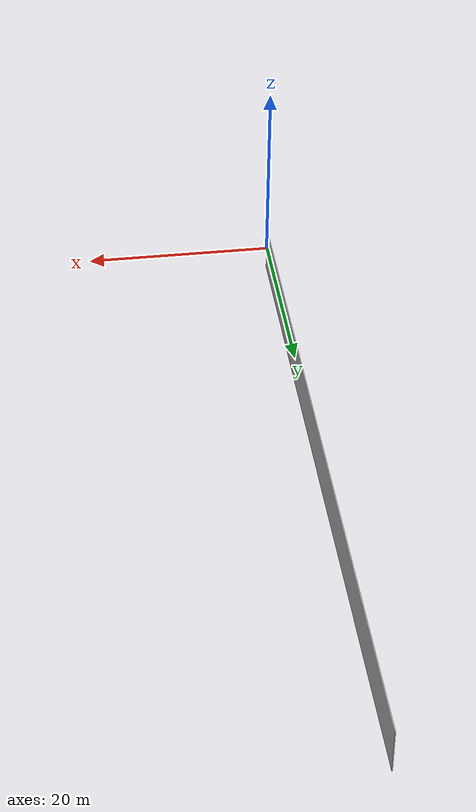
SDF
<?xml version='1.0'?>
<sdf version='1.7'>
  <model name='factory_wall2'>
    <link name='link'>
      <self_collide>0</self_collide>
      <enable_wind>0</enable_wind>
      <kinematic>0</kinematic>
      <inertial>
        <inertia>
          <ixx>0</ixx>
          <ixy>0</ixy>
          <ixz>0</ixz>
          <iyy>0</iyy>
          <iyz>0</iyz>
          <izz>0</izz>
        </inertia>
        <mass>0</mass>
        <pose>0 0 0 0 -0 0</pose>
      </inertial>
      <pose>0.05 37.5 0 0 -0 0</pose>
      <visual name='visual'>
        <geometry>
          <box>
            <size>0.1 75 5</size>
          </box>
        </geometry>
        <material>
          <script>
            <uri>https://fuel.ignitionrobotics.org/1.0/makerspet/models/room_wall_2x5m/1/files/material/script</uri>
            <uri>https://fuel.ignitionrobotics.org/1.0/makerspet/models/room_wall_2x5m/1/files/material/textures</uri>
            <name>Custom/room_wall_2x5m</name>
          </script>
          <shader type='pixel'/>
        </material>
        <pose>0 0 0 0 -0 0</pose>
        <transparency>0</transparency>
        <cast_shadows>1</cast_shadows>
      </visual>
      <collision name='collision'>
        <laser_retro>0</laser_retro>
        <max_contacts>10</max_contacts>
        <pose>0 0 0 0 -0 0</pose>
        <geometry>
          <box>
            <size>0.1 75 5</size>
          </box>
        </geometry>
        <surface>
          <friction>
            <ode>
              <mu>1</mu>
              <mu2>1</mu2>
              <fdir1>0 0 0</fdir1>
              <slip1>0</slip1>
              <slip2>0</slip2>
            </ode>
            <torsional>
              <coefficient>1</coefficient>
              <patch_radius>0</patch_radius>
              <surface_radius>0</surface_radius>
              <use_patch_radius>1</use_patch_radius>
              <ode>
                <slip>0</slip>
              </ode>
            </torsional>
          </friction>
          <bounce>
            <restitution_coefficient>0</restitution_coefficient>
            <threshold>1e+06</threshold>
          </bounce>
          <contact>
            <collide_without_contact>0</collide_without_contact>
            <collide_without_contact_bitmask>1</collide_without_contact_bitmask>
            <collide_bitmask>1</collide_bitmask>
            <ode>
              <soft_cfm>0</soft_cfm>
              <soft_erp>0.2</soft_erp>
              <kp>1e+13</kp>
              <kd>1</kd>
              <max_vel>0.01</max_vel>
              <min_depth>0</min_depth>
            </ode>
            <bullet>
              <split_impulse>1</split_impulse>
              <split_impulse_penetration_threshold>-0.01</split_impulse_penetration_threshold>
              <soft_cfm>0</soft_cfm>
              <soft_erp>0.2</soft_erp>
              <kp>1e+13</kp>
              <kd>1</kd>
            </bullet>
          </contact>
        </surface>
      </collision>
    </link>
    <static>1</static>
    <allow_auto_disable>1</allow_auto_disable>
  </model>
</sdf>
